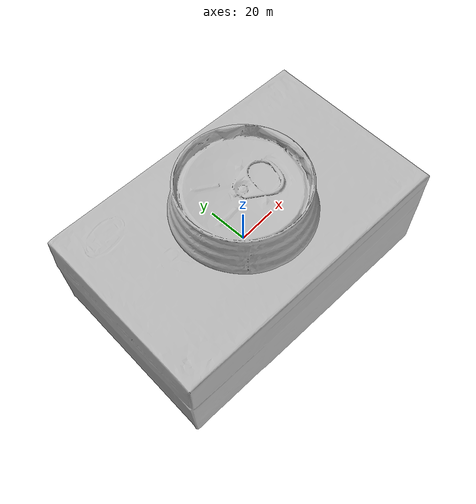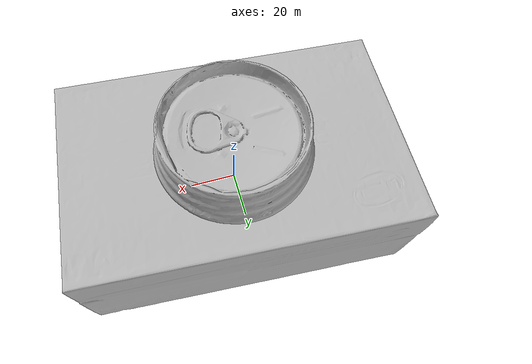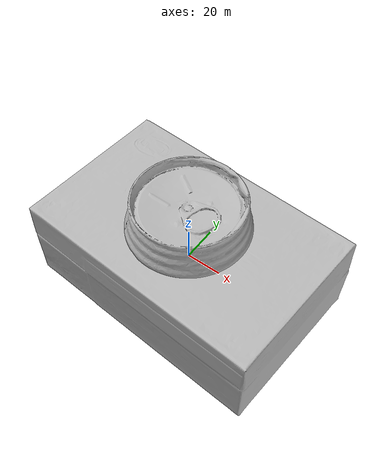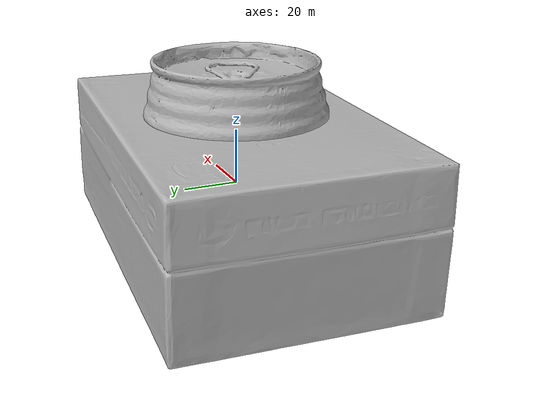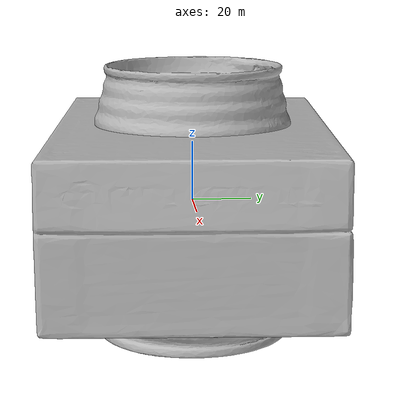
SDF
<?xml version="1.0" ?>
<sdf version="1.4">
  <world name="default">
    <light name="light1" type="point">
      <pose>0 0 1 0 0 0</pose>
      <diffuse>3 3 3 1</diffuse>
      <specular>3 3 3 1</specular>
    </light>
    <light name="light2" type="point">
      <pose>0 0.5 2 0 0 0</pose>
      <diffuse>1 1 1 1</diffuse>
      <specular>1 1 1 1</specular>
    </light>
    <light name="light3" type="point">
      <pose>0 0.5 2 0 0 0</pose>
      <diffuse>3 3 3 1</diffuse>
      <specular>3 3 3 1</specular>
    </light>
    <scene>
      <ambient>0.7 0.7 0.7</ambient>
    </scene>
    <model name="box1">
      <link name="link_box1">
        <collision name="default">
          <geometry>
            <mesh>
              <uri>model://realsense_box/collision_meshes/collision.obj</uri>
              <scale>1.0 1.0 1.0</scale>
            </mesh>
          </geometry>
          <surface>
            <friction>
              <ode>
                <mu>0.5</mu>
                <mu2>0.5</mu2>
              </ode>
            </friction>
            <contact>
              <ode>
                <max_vel>0</max_vel>
                <min_depth>0.0001</min_depth>
                <kp>1e8</kp>
              </ode>
            </contact>
          </surface>
        </collision>
        <visual name="default">
          <geometry>
            <mesh>
              <uri>model://realsense_box/visual_meshes/visual.dae</uri>
              <scale>1.0 1.0 1.0</scale>
            </mesh>
          </geometry>
        </visual>
        <inertial>
          <mass>0.5864310264587402</mass>
          <pose>4.0744838770478964e-05 8.587492629885674e-05 -2.4153792764991522e-05 -0.00012602841398420584 -0.00635893997803049 0.005012323893530406</pose>
          <inertia>
            <ixx>0.00055784633</ixx>
            <iyy>0.0011643406</iyy>
            <izz>0.0014403972</izz>
            <ixy>0</ixy>
            <ixz>0</ixz>
            <iyz>0</iyz>
          </inertia>
        </inertial>
      </link>
      <pose>0.22432783246040344 -0.1805415153503418 0.027316000312566757 -1.9971045720336175e-07 8.10328590716196e-08 -0.07617699224859757</pose>
    </model>
    <model name="box2">
      <link name="link_box2">
        <collision name="default">
          <geometry>
            <mesh>
              <uri>model://wooden_puzzle1/collision_meshes/collision.obj</uri>
              <scale>1.0 1.0 1.0</scale>
            </mesh>
          </geometry>
          <surface>
            <friction>
              <ode>
                <mu>0.5</mu>
                <mu2>0.5</mu2>
              </ode>
            </friction>
            <contact>
              <ode>
                <max_vel>0</max_vel>
                <min_depth>0.0001</min_depth>
                <kp>1e8</kp>
              </ode>
            </contact>
          </surface>
        </collision>
        <visual name="default">
          <geometry>
            <mesh>
              <uri>model://wooden_puzzle1/visual_meshes/visual.dae</uri>
              <scale>1.0 1.0 1.0</scale>
            </mesh>
          </geometry>
        </visual>
        <inertial>
          <mass>0.029293930158019066</mass>
          <pose>-0.00017350679263472557 7.972260209498927e-05 -9.191554272547364e-05 -0.07784356807478612 -0.26361316070226715 -0.552870069934309</pose>
          <inertia>
            <ixx>5.5269634e-06</ixx>
            <iyy>5.4205675e-06</iyy>
            <izz>5.4852344e-06</izz>
            <ixy>0</ixy>
            <ixz>0</ixz>
            <iyz>0</iyz>
          </inertia>
        </inertial>
      </link>
      <pose>0.24149873852729797 0.11525265872478485 0.016802020370960236 0.010511534599935214 -0.009453991003845794 0.9346675154911342</pose>
    </model>
    <model name="box3">
      <link name="link_box3">
        <collision name="default">
          <geometry>
            <mesh>
              <uri>model://wooden_puzzle2/collision_meshes/collision.obj</uri>
              <scale>1.0 1.0 1.0</scale>
            </mesh>
          </geometry>
          <surface>
            <friction>
              <ode>
                <mu>0.5</mu>
                <mu2>0.5</mu2>
              </ode>
            </friction>
            <contact>
              <ode>
                <max_vel>0</max_vel>
                <min_depth>0.0001</min_depth>
                <kp>1e8</kp>
              </ode>
            </contact>
          </surface>
        </collision>
        <visual name="default">
          <geometry>
            <mesh>
              <uri>model://wooden_puzzle2/visual_meshes/visual.dae</uri>
              <scale>1.0 1.0 1.0</scale>
            </mesh>
          </geometry>
        </visual>
        <inertial>
          <mass>0.046210821717977524</mass>
          <pose>2.7402538762544282e-05 4.9976635636994615e-05 6.587122334167361e-05 -0.19202726218652877 0.6112834530151037 -0.6338736448019666</pose>
          <inertia>
            <ixx>8.590097e-06</ixx>
            <iyy>8.826809e-06</iyy>
            <izz>8.7012395e-06</izz>
            <ixy>0</ixy>
            <ixz>0</ixz>
            <iyz>0</iyz>
          </inertia>
        </inertial>
      </link>
      <pose>0.06791389733552933 0.18464131653308868 0.016917739063501358 0.02084717971098798 0.0007225980854827388 2.7727999252654207</pose>
    </model>
    <model name="can1">
      <link name="link_can1">
        <collision name="default">
          <geometry>
            <mesh>
              <uri>model://pepsi/collision_meshes/collision.obj</uri>
              <scale>1.0 1.0 1.0</scale>
            </mesh>
          </geometry>
          <surface>
            <friction>
              <ode>
                <mu>0.5</mu>
                <mu2>0.5</mu2>
              </ode>
            </friction>
            <contact>
              <ode>
                <max_vel>0</max_vel>
                <min_depth>0.0001</min_depth>
                <kp>1e8</kp>
              </ode>
            </contact>
          </surface>
        </collision>
        <visual name="default">
          <geometry>
            <mesh>
              <uri>model://pepsi/visual_meshes/visual.dae</uri>
              <scale>1.0 1.0 1.0</scale>
            </mesh>
          </geometry>
        </visual>
        <inertial>
          <mass>0.38708412647247314</mass>
          <pose>-7.5590331107378e-05 2.9931279641459696e-05 -0.0003384356386959553 -0.0010677624110939459 -0.0021735778616849013 0.5673701652335379</pose>
          <inertia>
            <ixx>0.00077114574</ixx>
            <iyy>0.0007705839</iyy>
            <izz>0.00016412749</izz>
            <ixy>0</ixy>
            <ixz>0</ixz>
            <iyz>0</iyz>
          </inertia>
        </inertial>
      </link>
      <pose>-0.07049914449453354 -0.1627051681280136 0.0744963064789772 -1.89379159911823e-05 1.981478076486512e-06 1.1751527166680624</pose>
    </model>
    <model name="can2">
      <link name="link_can2">
        <collision name="default">
          <geometry>
            <mesh>
              <uri>model://redbull/collision_meshes/collision.obj</uri>
              <scale>1.0 1.0 1.0</scale>
            </mesh>
          </geometry>
          <surface>
            <friction>
              <ode>
                <mu>0.5</mu>
                <mu2>0.5</mu2>
              </ode>
            </friction>
            <contact>
              <ode>
                <max_vel>0</max_vel>
                <min_depth>0.0001</min_depth>
                <kp>1e8</kp>
              </ode>
            </contact>
          </surface>
        </collision>
        <visual name="default">
          <geometry>
            <mesh>
              <uri>model://redbull/visual_meshes/visual.dae</uri>
              <scale>1.0 1.0 1.0</scale>
            </mesh>
          </geometry>
        </visual>
        <inertial>
          <mass>0.22841571271419525</mass>
          <pose>-2.2126563635538332e-05 -0.00012659550702665 -0.0006860988214612007 0.001137008533125708 -0.010800935482360328 0.5858832407094048</pose>
          <inertia>
            <ixx>0.00021475992</ixx>
            <iyy>0.00021494119</iyy>
            <izz>0.00012744407</izz>
            <ixy>0</ixy>
            <ixz>0</ixz>
            <iyz>0</iyz>
          </inertia>
        </inertial>
      </link>
      <pose>-0.012927132658660412 0.20736467838287354 0.046385642141103745 -0.01048927817064389 0.007260109136474596 1.711799073663258</pose>
    </model>
    <physics type="ode">
      <max_contacts>50</max_contacts>
      <ode>
        <solver>
          <type>quick</type>
          <iters>75</iters>
        </solver>
        <constraints>
          <contact_max_correcting_vel>0</contact_max_correcting_vel>
          <contact_surface_layer>0</contact_surface_layer>
        </constraints>
      </ode>
    </physics>
  </world>
</sdf>
